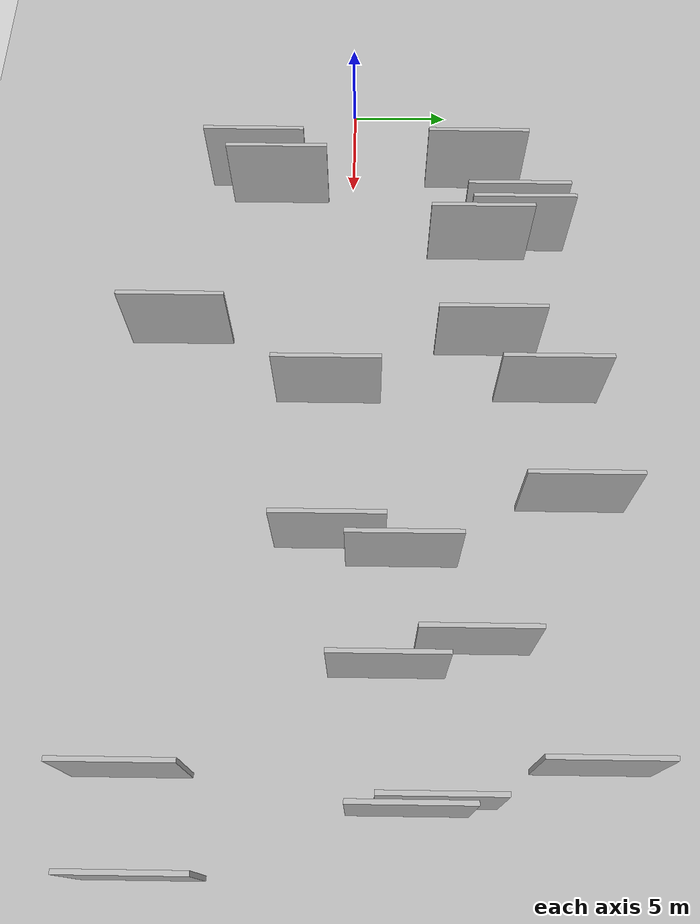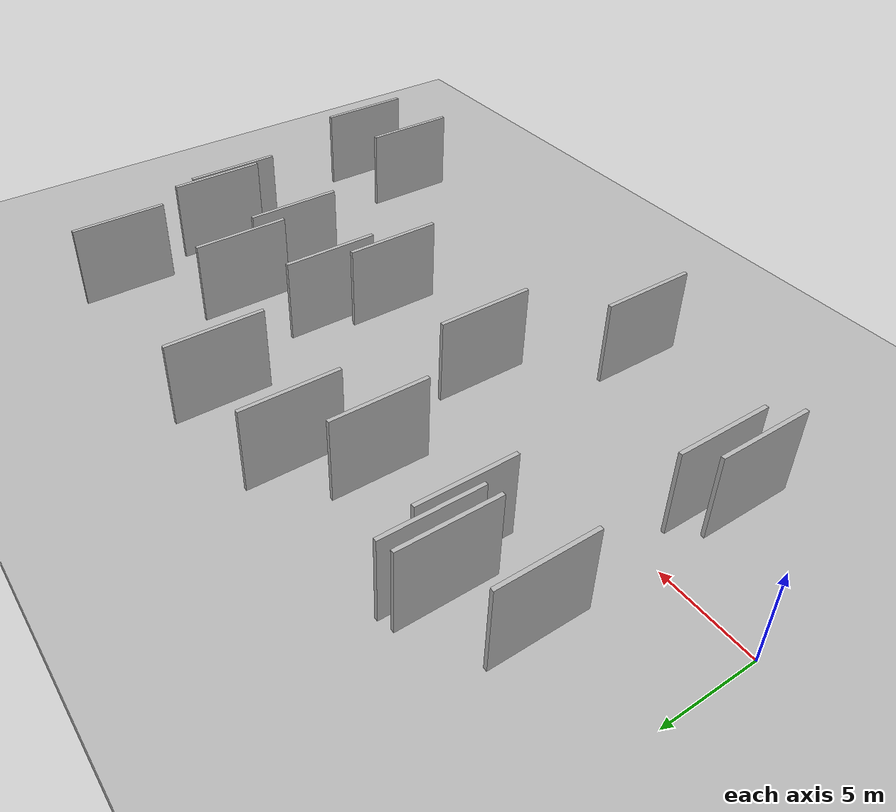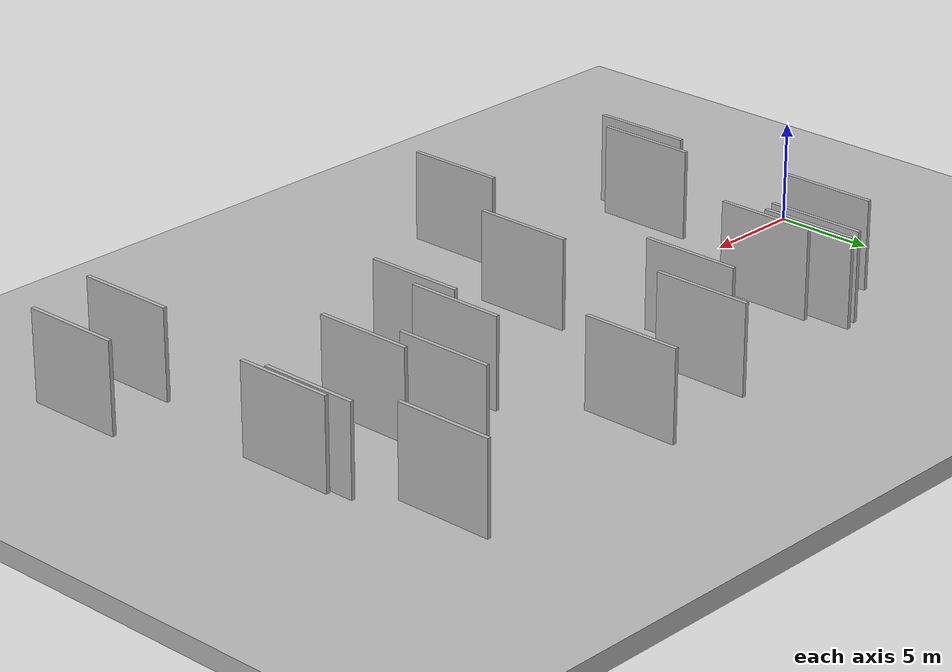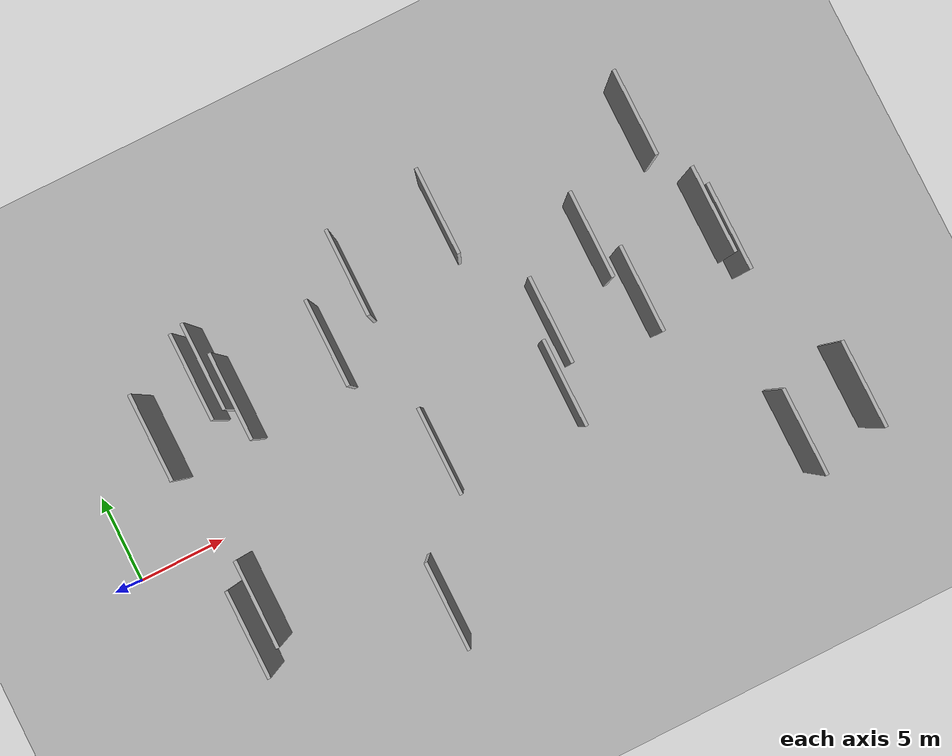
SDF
<?xml version="1.0" encoding="utf-8"?>

<sdf version="1.6">

   <world name="default">

      <gui fullscreen="0">

         <camera name="user_camera">

            <pose>-15 0 4.57585 0 0 0</pose>

            <view_controller>orbit</view_controller>

         </camera>

      </gui>

      <scene>

         <sky>

           <clouds>

             <speed>12</speed>

           </clouds>

         </sky>

         <ambient>0.4 0.4 0.4 1</ambient>

         <background>0.7 0.7 0.7 1</background>

         <shadows>1</shadows>

      </scene>

      <gravity>0 0 -9.8066</gravity>

      <magnetic_field>6e-06 2.3e-05 -4.2e-05</magnetic_field>

      <physics default="0" name="default_physics" type="ode">

         <ode>

            <solver>

               <type>quick</type>

               <iters>10</iters>

               <sor>1.0</sor>

               <use_dynamic_moi_rescaling>0</use_dynamic_moi_rescaling>

            </solver>

            <constraints>

               <cfm>0</cfm>

               <erp>0.2</erp>

               <contact_max_correcting_vel>100</contact_max_correcting_vel>

               <contact_surface_layer>0.001</contact_surface_layer>

            </constraints>

         </ode>

         <max_step_size>0.004</max_step_size>

         <real_time_factor>1</real_time_factor>

         <real_time_update_rate>250</real_time_update_rate>

      </physics>

      <light name="sun" type="directional">

         <cast_shadows>1</cast_shadows>

         <pose>0 0 10 0 0 0</pose>

         <diffuse>0.8 0.8 0.8 1</diffuse>

         <specular>0.2 0.2 0.2 1</specular>

         <attenuation>

            <range>1000</range>

            <constant>0.9</constant>

            <linear>0.01</linear>

            <quadratic>0.001</quadratic>

         </attenuation>

         <direction>-0.5 0.1 -0.9</direction>

      </light>

      <include>

         <name>ground_plane_1</name>

         <uri>model://HANNAS_ground_plane</uri>

         <pose>0 0 0  0 0 0</pose>

      </include>

      <include>

         <name>ground_plane_2</name>

         <uri>model://HANNAS_ground_plane</uri>

         <pose>100 0 0  0 0 0</pose>

      </include>

      <model name="HANNAS_wall_1">

         <static>1</static>

         <pose frame="">6.1641 -3.7727 0.0 0.000000 0.000000 1.570796</pose>

         <link name="link">

            <pose frame="">0 0 2.50 0 0 0</pose>

            <collision name="collision">

               <geometry>

                  <box>

                     <size>5.00 0.2 5.00</size>

                  </box>

               </geometry>

               <max_contacts>10</max_contacts>

               <surface>

                  <contact>

                     <ode/>

                  </contact>

                  <bounce/>

                  <friction>

                     <torsional>

                        <ode/>

                     </torsional>

                     <ode/>

                  </friction>

               </surface>

            </collision>

            <visual name="visual">

               <cast_shadows>0</cast_shadows>

               <geometry>

                  <box>

                     <size>5.00 0.2 5.00</size>

                  </box>

               </geometry>

               <material>

                  <script>

                     <uri>model://HANNAS_wall/materials/scripts</uri>

                     <uri>model://HANNAS_wall/materials/textures</uri>

                     <name>vrc/HANNAS_wall</name>

                  </script>

               </material>

            </visual>

            <self_collide>0</self_collide>

            <enable_wind>0</enable_wind>

            <kinematic>0</kinematic>

         </link>

      </model>

      <model name="HANNAS_wall_2">

         <static>1</static>

         <pose frame="">26.2508 2.5221 0.0 0.000000 0.000000 1.570796</pose>

         <link name="link">

            <pose frame="">0 0 2.50 0 0 0</pose>

            <collision name="collision">

               <geometry>

                  <box>

                     <size>5.00 0.2 5.00</size>

                  </box>

               </geometry>

               <max_contacts>10</max_contacts>

               <surface>

                  <contact>

                     <ode/>

                  </contact>

                  <bounce/>

                  <friction>

                     <torsional>

                        <ode/>

                     </torsional>

                     <ode/>

                  </friction>

               </surface>

            </collision>

            <visual name="visual">

               <cast_shadows>0</cast_shadows>

               <geometry>

                  <box>

                     <size>5.00 0.2 5.00</size>

                  </box>

               </geometry>

               <material>

                  <script>

                     <uri>model://HANNAS_wall/materials/scripts</uri>

                     <uri>model://HANNAS_wall/materials/textures</uri>

                     <name>vrc/HANNAS_wall</name>

                  </script>

               </material>

            </visual>

            <self_collide>0</self_collide>

            <enable_wind>0</enable_wind>

            <kinematic>0</kinematic>

         </link>

      </model>

      <model name="HANNAS_wall_3">

         <static>1</static>

         <pose frame="">36.4017 3.8756 0.0 0.000000 0.000000 1.570796</pose>

         <link name="link">

            <pose frame="">0 0 2.50 0 0 0</pose>

            <collision name="collision">

               <geometry>

                  <box>

                     <size>5.00 0.2 5.00</size>

                  </box>

               </geometry>

               <max_contacts>10</max_contacts>

               <surface>

                  <contact>

                     <ode/>

                  </contact>

                  <bounce/>

                  <friction>

                     <torsional>

                        <ode/>

                     </torsional>

                     <ode/>

                  </friction>

               </surface>

            </collision>

            <visual name="visual">

               <cast_shadows>0</cast_shadows>

               <geometry>

                  <box>

                     <size>5.00 0.2 5.00</size>

                  </box>

               </geometry>

               <material>

                  <script>

                     <uri>model://HANNAS_wall/materials/scripts</uri>

                     <uri>model://HANNAS_wall/materials/textures</uri>

                     <name>vrc/HANNAS_wall</name>

                  </script>

               </material>

            </visual>

            <self_collide>0</self_collide>

            <enable_wind>0</enable_wind>

            <kinematic>0</kinematic>

         </link>

      </model>

      <model name="HANNAS_wall_4">

         <static>1</static>

         <pose frame="">31.1957 1.8677 0.0 0.000000 0.000000 1.570796</pose>

         <link name="link">

            <pose frame="">0 0 2.50 0 0 0</pose>

            <collision name="collision">

               <geometry>

                  <box>

                     <size>5.00 0.2 5.00</size>

                  </box>

               </geometry>

               <max_contacts>10</max_contacts>

               <surface>

                  <contact>

                     <ode/>

                  </contact>

                  <bounce/>

                  <friction>

                     <torsional>

                        <ode/>

                     </torsional>

                     <ode/>

                  </friction>

               </surface>

            </collision>

            <visual name="visual">

               <cast_shadows>0</cast_shadows>

               <geometry>

                  <box>

                     <size>5.00 0.2 5.00</size>

                  </box>

               </geometry>

               <material>

                  <script>

                     <uri>model://HANNAS_wall/materials/scripts</uri>

                     <uri>model://HANNAS_wall/materials/textures</uri>

                     <name>vrc/HANNAS_wall</name>

                  </script>

               </material>

            </visual>

            <self_collide>0</self_collide>

            <enable_wind>0</enable_wind>

            <kinematic>0</kinematic>

         </link>

      </model>

      <model name="HANNAS_wall_5">

         <static>1</static>

         <pose frame="">15.3602 6.6557 0.0 0.000000 0.000000 1.570796</pose>

         <link name="link">

            <pose frame="">0 0 2.50 0 0 0</pose>

            <collision name="collision">

               <geometry>

                  <box>

                     <size>5.00 0.2 5.00</size>

                  </box>

               </geometry>

               <max_contacts>10</max_contacts>

               <surface>

                  <contact>

                     <ode/>

                  </contact>

                  <bounce/>

                  <friction>

                     <torsional>

                        <ode/>

                     </torsional>

                     <ode/>

                  </friction>

               </surface>

            </collision>

            <visual name="visual">

               <cast_shadows>0</cast_shadows>

               <geometry>

                  <box>

                     <size>5.00 0.2 5.00</size>

                  </box>

               </geometry>

               <material>

                  <script>

                     <uri>model://HANNAS_wall/materials/scripts</uri>

                     <uri>model://HANNAS_wall/materials/textures</uri>

                     <name>vrc/HANNAS_wall</name>

                  </script>

               </material>

            </visual>

            <self_collide>0</self_collide>

            <enable_wind>0</enable_wind>

            <kinematic>0</kinematic>

         </link>

      </model>

      <model name="HANNAS_wall_6">

         <static>1</static>

         <pose frame="">25.4307 -0.7055 0.0 0.000000 0.000000 1.570796</pose>

         <link name="link">

            <pose frame="">0 0 2.50 0 0 0</pose>

            <collision name="collision">

               <geometry>

                  <box>

                     <size>5.00 0.2 5.00</size>

                  </box>

               </geometry>

               <max_contacts>10</max_contacts>

               <surface>

                  <contact>

                     <ode/>

                  </contact>

                  <bounce/>

                  <friction>

                     <torsional>

                        <ode/>

                     </torsional>

                     <ode/>

                  </friction>

               </surface>

            </collision>

            <visual name="visual">

               <cast_shadows>0</cast_shadows>

               <geometry>

                  <box>

                     <size>5.00 0.2 5.00</size>

                  </box>

               </geometry>

               <material>

                  <script>

                     <uri>model://HANNAS_wall/materials/scripts</uri>

                     <uri>model://HANNAS_wall/materials/textures</uri>

                     <name>vrc/HANNAS_wall</name>

                  </script>

               </material>

            </visual>

            <self_collide>0</self_collide>

            <enable_wind>0</enable_wind>

            <kinematic>0</kinematic>

         </link>

      </model>

      <model name="HANNAS_wall_7">

         <static>1</static>

         <pose frame="">8.3149 8.2045 0.0 0.000000 0.000000 1.570796</pose>

         <link name="link">

            <pose frame="">0 0 2.50 0 0 0</pose>

            <collision name="collision">

               <geometry>

                  <box>

                     <size>5.00 0.2 5.00</size>

                  </box>

               </geometry>

               <max_contacts>10</max_contacts>

               <surface>

                  <contact>

                     <ode/>

                  </contact>

                  <bounce/>

                  <friction>

                     <torsional>

                        <ode/>

                     </torsional>

                     <ode/>

                  </friction>

               </surface>

            </collision>

            <visual name="visual">

               <cast_shadows>0</cast_shadows>

               <geometry>

                  <box>

                     <size>5.00 0.2 5.00</size>

                  </box>

               </geometry>

               <material>

                  <script>

                     <uri>model://HANNAS_wall/materials/scripts</uri>

                     <uri>model://HANNAS_wall/materials/textures</uri>

                     <name>vrc/HANNAS_wall</name>

                  </script>

               </material>

            </visual>

            <self_collide>0</self_collide>

            <enable_wind>0</enable_wind>

            <kinematic>0</kinematic>

         </link>

      </model>

      <model name="HANNAS_wall_8">

         <static>1</static>

         <pose frame="">9.6801 6.3993 0.0 0.000000 0.000000 1.570796</pose>

         <link name="link">

            <pose frame="">0 0 2.50 0 0 0</pose>

            <collision name="collision">

               <geometry>

                  <box>

                     <size>5.00 0.2 5.00</size>

                  </box>

               </geometry>

               <max_contacts>10</max_contacts>

               <surface>

                  <contact>

                     <ode/>

                  </contact>

                  <bounce/>

                  <friction>

                     <torsional>

                        <ode/>

                     </torsional>

                     <ode/>

                  </friction>

               </surface>

            </collision>

            <visual name="visual">

               <cast_shadows>0</cast_shadows>

               <geometry>

                  <box>

                     <size>5.00 0.2 5.00</size>

                  </box>

               </geometry>

               <material>

                  <script>

                     <uri>model://HANNAS_wall/materials/scripts</uri>

                     <uri>model://HANNAS_wall/materials/textures</uri>

                     <name>vrc/HANNAS_wall</name>

                  </script>

               </material>

            </visual>

            <self_collide>0</self_collide>

            <enable_wind>0</enable_wind>

            <kinematic>0</kinematic>

         </link>

      </model>

      <model name="HANNAS_wall_9">

         <static>1</static>

         <pose frame="">5.0648 6.3262 0.0 0.000000 0.000000 1.570796</pose>

         <link name="link">

            <pose frame="">0 0 2.50 0 0 0</pose>

            <collision name="collision">

               <geometry>

                  <box>

                     <size>5.00 0.2 5.00</size>

                  </box>

               </geometry>

               <max_contacts>10</max_contacts>

               <surface>

                  <contact>

                     <ode/>

                  </contact>

                  <bounce/>

                  <friction>

                     <torsional>

                        <ode/>

                     </torsional>

                     <ode/>

                  </friction>

               </surface>

            </collision>

            <visual name="visual">

               <cast_shadows>0</cast_shadows>

               <geometry>

                  <box>

                     <size>5.00 0.2 5.00</size>

                  </box>

               </geometry>

               <material>

                  <script>

                     <uri>model://HANNAS_wall/materials/scripts</uri>

                     <uri>model://HANNAS_wall/materials/textures</uri>

                     <name>vrc/HANNAS_wall</name>

                  </script>

               </material>

            </visual>

            <self_collide>0</self_collide>

            <enable_wind>0</enable_wind>

            <kinematic>0</kinematic>

         </link>

      </model>

      <model name="HANNAS_wall_10">

         <static>1</static>

         <pose frame="">18.0719 -0.9629 0.0 0.000000 0.000000 1.570796</pose>

         <link name="link">

            <pose frame="">0 0 2.50 0 0 0</pose>

            <collision name="collision">

               <geometry>

                  <box>

                     <size>5.00 0.2 5.00</size>

                  </box>

               </geometry>

               <max_contacts>10</max_contacts>

               <surface>

                  <contact>

                     <ode/>

                  </contact>

                  <bounce/>

                  <friction>

                     <torsional>

                        <ode/>

                     </torsional>

                     <ode/>

                  </friction>

               </surface>

            </collision>

            <visual name="visual">

               <cast_shadows>0</cast_shadows>

               <geometry>

                  <box>

                     <size>5.00 0.2 5.00</size>

                  </box>

               </geometry>

               <material>

                  <script>

                     <uri>model://HANNAS_wall/materials/scripts</uri>

                     <uri>model://HANNAS_wall/materials/textures</uri>

                     <name>vrc/HANNAS_wall</name>

                  </script>

               </material>

            </visual>

            <self_collide>0</self_collide>

            <enable_wind>0</enable_wind>

            <kinematic>0</kinematic>

         </link>

      </model>

      <model name="HANNAS_wall_11">

         <static>1</static>

         <pose frame="">5.0870 -4.9607 0.0 0.000000 0.000000 1.570796</pose>

         <link name="link">

            <pose frame="">0 0 2.50 0 0 0</pose>

            <collision name="collision">

               <geometry>

                  <box>

                     <size>5.00 0.2 5.00</size>

                  </box>

               </geometry>

               <max_contacts>10</max_contacts>

               <surface>

                  <contact>

                     <ode/>

                  </contact>

                  <bounce/>

                  <friction>

                     <torsional>

                        <ode/>

                     </torsional>

                     <ode/>

                  </friction>

               </surface>

            </collision>

            <visual name="visual">

               <cast_shadows>0</cast_shadows>

               <geometry>

                  <box>

                     <size>5.00 0.2 5.00</size>

                  </box>

               </geometry>

               <material>

                  <script>

                     <uri>model://HANNAS_wall/materials/scripts</uri>

                     <uri>model://HANNAS_wall/materials/textures</uri>

                     <name>vrc/HANNAS_wall</name>

                  </script>

               </material>

            </visual>

            <self_collide>0</self_collide>

            <enable_wind>0</enable_wind>

            <kinematic>0</kinematic>

         </link>

      </model>

      <model name="HANNAS_wall_12">

         <static>1</static>

         <pose frame="">35.0499 10.2247 0.0 0.000000 0.000000 1.570796</pose>

         <link name="link">

            <pose frame="">0 0 2.50 0 0 0</pose>

            <collision name="collision">

               <geometry>

                  <box>

                     <size>5.00 0.2 5.00</size>

                  </box>

               </geometry>

               <max_contacts>10</max_contacts>

               <surface>

                  <contact>

                     <ode/>

                  </contact>

                  <bounce/>

                  <friction>

                     <torsional>

                        <ode/>

                     </torsional>

                     <ode/>

                  </friction>

               </surface>

            </collision>

            <visual name="visual">

               <cast_shadows>0</cast_shadows>

               <geometry>

                  <box>

                     <size>5.00 0.2 5.00</size>

                  </box>

               </geometry>

               <material>

                  <script>

                     <uri>model://HANNAS_wall/materials/scripts</uri>

                     <uri>model://HANNAS_wall/materials/textures</uri>

                     <name>vrc/HANNAS_wall</name>

                  </script>

               </material>

            </visual>

            <self_collide>0</self_collide>

            <enable_wind>0</enable_wind>

            <kinematic>0</kinematic>

         </link>

      </model>

      <model name="HANNAS_wall_13">

         <static>1</static>

         <pose frame="">35.3640 -8.5149 0.0 0.000000 0.000000 1.570796</pose>

         <link name="link">

            <pose frame="">0 0 2.50 0 0 0</pose>

            <collision name="collision">

               <geometry>

                  <box>

                     <size>5.00 0.2 5.00</size>

                  </box>

               </geometry>

               <max_contacts>10</max_contacts>

               <surface>

                  <contact>

                     <ode/>

                  </contact>

                  <bounce/>

                  <friction>

                     <torsional>

                        <ode/>

                     </torsional>

                     <ode/>

                  </friction>

               </surface>

            </collision>

            <visual name="visual">

               <cast_shadows>0</cast_shadows>

               <geometry>

                  <box>

                     <size>5.00 0.2 5.00</size>

                  </box>

               </geometry>

               <material>

                  <script>

                     <uri>model://HANNAS_wall/materials/scripts</uri>

                     <uri>model://HANNAS_wall/materials/textures</uri>

                     <name>vrc/HANNAS_wall</name>

                  </script>

               </material>

            </visual>

            <self_collide>0</self_collide>

            <enable_wind>0</enable_wind>

            <kinematic>0</kinematic>

         </link>

      </model>

      <model name="HANNAS_wall_14">

         <static>1</static>

         <pose frame="">17.9203 9.4500 0.0 0.000000 0.000000 1.570796</pose>

         <link name="link">

            <pose frame="">0 0 2.50 0 0 0</pose>

            <collision name="collision">

               <geometry>

                  <box>

                     <size>5.00 0.2 5.00</size>

                  </box>

               </geometry>

               <max_contacts>10</max_contacts>

               <surface>

                  <contact>

                     <ode/>

                  </contact>

                  <bounce/>

                  <friction>

                     <torsional>

                        <ode/>

                     </torsional>

                     <ode/>

                  </friction>

               </surface>

            </collision>

            <visual name="visual">

               <cast_shadows>0</cast_shadows>

               <geometry>

                  <box>

                     <size>5.00 0.2 5.00</size>

                  </box>

               </geometry>

               <material>

                  <script>

                     <uri>model://HANNAS_wall/materials/scripts</uri>

                     <uri>model://HANNAS_wall/materials/textures</uri>

                     <name>vrc/HANNAS_wall</name>

                  </script>

               </material>

            </visual>

            <self_collide>0</self_collide>

            <enable_wind>0</enable_wind>

            <kinematic>0</kinematic>

         </link>

      </model>

      <model name="HANNAS_wall_15">

         <static>1</static>

         <pose frame="">9.0961 8.4285 0.0 0.000000 0.000000 1.570796</pose>

         <link name="link">

            <pose frame="">0 0 2.50 0 0 0</pose>

            <collision name="collision">

               <geometry>

                  <box>

                     <size>5.00 0.2 5.00</size>

                  </box>

               </geometry>

               <max_contacts>10</max_contacts>

               <surface>

                  <contact>

                     <ode/>

                  </contact>

                  <bounce/>

                  <friction>

                     <torsional>

                        <ode/>

                     </torsional>

                     <ode/>

                  </friction>

               </surface>

            </collision>

            <visual name="visual">

               <cast_shadows>0</cast_shadows>

               <geometry>

                  <box>

                     <size>5.00 0.2 5.00</size>

                  </box>

               </geometry>

               <material>

                  <script>

                     <uri>model://HANNAS_wall/materials/scripts</uri>

                     <uri>model://HANNAS_wall/materials/textures</uri>

                     <name>vrc/HANNAS_wall</name>

                  </script>

               </material>

            </visual>

            <self_collide>0</self_collide>

            <enable_wind>0</enable_wind>

            <kinematic>0</kinematic>

         </link>

      </model>

      <model name="HANNAS_wall_16">

         <static>1</static>

         <pose frame="">23.5340 10.2240 0.0 0.000000 0.000000 1.570796</pose>

         <link name="link">

            <pose frame="">0 0 2.50 0 0 0</pose>

            <collision name="collision">

               <geometry>

                  <box>

                     <size>5.00 0.2 5.00</size>

                  </box>

               </geometry>

               <max_contacts>10</max_contacts>

               <surface>

                  <contact>

                     <ode/>

                  </contact>

                  <bounce/>

                  <friction>

                     <torsional>

                        <ode/>

                     </torsional>

                     <ode/>

                  </friction>

               </surface>

            </collision>

            <visual name="visual">

               <cast_shadows>0</cast_shadows>

               <geometry>

                  <box>

                     <size>5.00 0.2 5.00</size>

                  </box>

               </geometry>

               <material>

                  <script>

                     <uri>model://HANNAS_wall/materials/scripts</uri>

                     <uri>model://HANNAS_wall/materials/textures</uri>

                     <name>vrc/HANNAS_wall</name>

                  </script>

               </material>

            </visual>

            <self_collide>0</self_collide>

            <enable_wind>0</enable_wind>

            <kinematic>0</kinematic>

         </link>

      </model>

      <model name="HANNAS_wall_17">

         <static>1</static>

         <pose frame="">39.2092 -7.6885 0.0 0.000000 0.000000 1.570796</pose>

         <link name="link">

            <pose frame="">0 0 2.50 0 0 0</pose>

            <collision name="collision">

               <geometry>

                  <box>

                     <size>5.00 0.2 5.00</size>

                  </box>

               </geometry>

               <max_contacts>10</max_contacts>

               <surface>

                  <contact>

                     <ode/>

                  </contact>

                  <bounce/>

                  <friction>

                     <torsional>

                        <ode/>

                     </torsional>

                     <ode/>

                  </friction>

               </surface>

            </collision>

            <visual name="visual">

               <cast_shadows>0</cast_shadows>

               <geometry>

                  <box>

                     <size>5.00 0.2 5.00</size>

                  </box>

               </geometry>

               <material>

                  <script>

                     <uri>model://HANNAS_wall/materials/scripts</uri>

                     <uri>model://HANNAS_wall/materials/textures</uri>

                     <name>vrc/HANNAS_wall</name>

                  </script>

               </material>

            </visual>

            <self_collide>0</self_collide>

            <enable_wind>0</enable_wind>

            <kinematic>0</kinematic>

         </link>

      </model>

      <model name="HANNAS_wall_18">

         <static>1</static>

         <pose frame="">14.8753 -8.2486 0.0 0.000000 0.000000 1.570796</pose>

         <link name="link">

            <pose frame="">0 0 2.50 0 0 0</pose>

            <collision name="collision">

               <geometry>

                  <box>

                     <size>5.00 0.2 5.00</size>

                  </box>

               </geometry>

               <max_contacts>10</max_contacts>

               <surface>

                  <contact>

                     <ode/>

                  </contact>

                  <bounce/>

                  <friction>

                     <torsional>

                        <ode/>

                     </torsional>

                     <ode/>

                  </friction>

               </surface>

            </collision>

            <visual name="visual">

               <cast_shadows>0</cast_shadows>

               <geometry>

                  <box>

                     <size>5.00 0.2 5.00</size>

                  </box>

               </geometry>

               <material>

                  <script>

                     <uri>model://HANNAS_wall/materials/scripts</uri>

                     <uri>model://HANNAS_wall/materials/textures</uri>

                     <name>vrc/HANNAS_wall</name>

                  </script>

               </material>

            </visual>

            <self_collide>0</self_collide>

            <enable_wind>0</enable_wind>

            <kinematic>0</kinematic>

         </link>

      </model>

      <model name="HANNAS_wall_19">

         <static>1</static>

         <pose frame="">36.7167 2.7261 0.0 0.000000 0.000000 1.570796</pose>

         <link name="link">

            <pose frame="">0 0 2.50 0 0 0</pose>

            <collision name="collision">

               <geometry>

                  <box>

                     <size>5.00 0.2 5.00</size>

                  </box>

               </geometry>

               <max_contacts>10</max_contacts>

               <surface>

                  <contact>

                     <ode/>

                  </contact>

                  <bounce/>

                  <friction>

                     <torsional>

                        <ode/>

                     </torsional>

                     <ode/>

                  </friction>

               </surface>

            </collision>

            <visual name="visual">

               <cast_shadows>0</cast_shadows>

               <geometry>

                  <box>

                     <size>5.00 0.2 5.00</size>

                  </box>

               </geometry>

               <material>

                  <script>

                     <uri>model://HANNAS_wall/materials/scripts</uri>

                     <uri>model://HANNAS_wall/materials/textures</uri>

                     <name>vrc/HANNAS_wall</name>

                  </script>

               </material>

            </visual>

            <self_collide>0</self_collide>

            <enable_wind>0</enable_wind>

            <kinematic>0</kinematic>

         </link>

      </model>

      <model name="HANNAS_wall_20">

         <static>1</static>

         <pose frame="">30.1353 5.5513 0.0 0.000000 0.000000 1.570796</pose>

         <link name="link">

            <pose frame="">0 0 2.50 0 0 0</pose>

            <collision name="collision">

               <geometry>

                  <box>

                     <size>5.00 0.2 5.00</size>

                  </box>

               </geometry>

               <max_contacts>10</max_contacts>

               <surface>

                  <contact>

                     <ode/>

                  </contact>

                  <bounce/>

                  <friction>

                     <torsional>

                        <ode/>

                     </torsional>

                     <ode/>

                  </friction>

               </surface>

            </collision>

            <visual name="visual">

               <cast_shadows>0</cast_shadows>

               <geometry>

                  <box>

                     <size>5.00 0.2 5.00</size>

                  </box>

               </geometry>

               <material>

                  <script>

                     <uri>model://HANNAS_wall/materials/scripts</uri>

                     <uri>model://HANNAS_wall/materials/textures</uri>

                     <name>vrc/HANNAS_wall</name>

                  </script>

               </material>

            </visual>

            <self_collide>0</self_collide>

            <enable_wind>0</enable_wind>

            <kinematic>0</kinematic>

         </link>

      </model>

   </world>

</sdf>

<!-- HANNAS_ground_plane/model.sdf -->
<sdf version="1.4">
<model name="HANNAS_ground_plane">
  <static>true</static>
    <link name="link">
      <collision name="collision">
        <geometry>
          <plane>
            <normal>0 0 1</normal>
            <size>1000 1000</size>
          </plane>
        </geometry>
        <surface>
          <friction>
            <ode>
              <mu>100</mu>
              <mu2>50</mu2>
            </ode>
          </friction>
        </surface>
      </collision>
      <visual name="visual">
        <cast_shadows>false</cast_shadows>
        <geometry>
          <plane>
            <normal>0 0 1</normal>
            <size>1000 1000</size>
          </plane>
        </geometry>
        <material>
          <script>
            <uri>model://HANNAS_ground_plane/materials/scripts/HANNAS_ground_plane.material</uri>
	    <uri>model://HANNAS_ground_plane/materials/textures</uri>
            <name>HANNASGroundPlane/Image</name>
          </script>
        </material>
      </visual>
    </link>
  </model>
</sdf>
